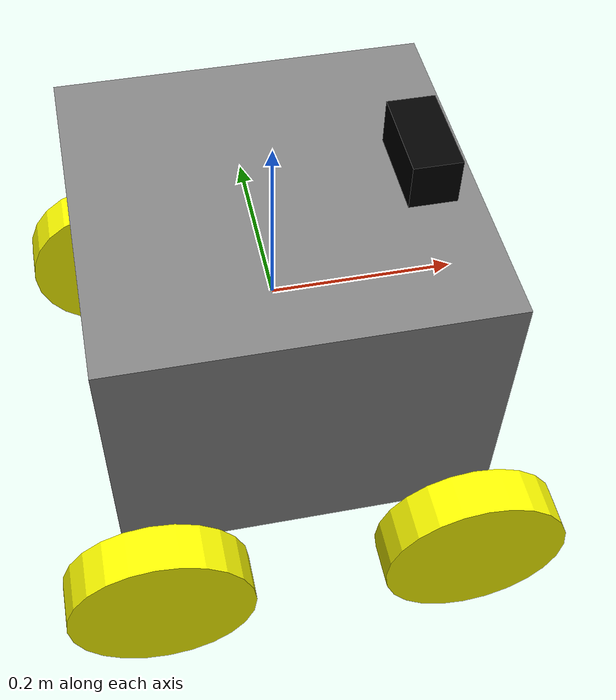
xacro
<?xml version="1.0"?>

<robot xmlns:xacro="http://www.ros.org/wiki/xacro" name="growbot">

    <xacro:include filename="$(find growbot_simulations)/urdf/wheel.xacro" />
    <xacro:include filename="$(find growbot_simulations)/urdf/camera.xacro" />
    <xacro:include filename="$(find growbot_simulations)/urdf/plugins.xacro" />
    <xacro:include filename="$(find growbot_simulations)/urdf/growbot.gazebo" />

  <material name="silver">
    <color rgba="0.5 0.5 0.5 1"/>
  </material>
  <material name="black">
    <color rgba="0 0 0 1"/>
  </material>
  <material name="yellow">
    <color rgba="1 1 0 1"/>
  </material>

  <xacro:property name="body_len" value="0.4" />
  <xacro:property name="body_width" value="0.4" />
  <xacro:property name="body_height" value="0.3" />
  <xacro:property name="wheel_diam" value="0.2" />
  <xacro:property name="wheel_width" value="0.05" />
  <xacro:property name="wheel_x_offset" value="0.17" />
  <xacro:property name="wheel_y_offset" value="0.25" />
  <xacro:property name="wheel_z_offset" value="-0.17" />
  <xacro:property name="mass" value="7" />

  <!-- dummy link and joint added to fix inertial error per [https://answers.ros.org/question/192817/error-msg-the-root-link_base-has-an-inertia-specified-in-the-urdf-but-kdl/] -->
  <link name="dummy_link">
  </link>

    <link name="chassis_link">
        <visual>
            <geometry>
                <box size="${body_len} ${body_width} ${body_height}"/>
            </geometry>
            <material name="silver"/>
        </visual>
        <collision>
            <geometry>
                <box size="${body_len} ${body_width} ${body_height}"/>
            </geometry>
        </collision>
        <inertial>
            <mass value="${mass}"/>
            <!--TODO: Make this an equation to calcultae it out -->
            <inertia ixx="0.145833333" ixy="0.0" ixz="0.0" iyy="0.186666667" iyz="0.0" izz="0.145833333"/>
        </inertial>
    </link>

      <!-- dummy link and joint added to fix inertial error per [https://answers.ros.org/question/192817/error-msg-the-root-link_base-has-an-inertia-specified-in-the-urdf-but-kdl/] -->
  <joint name="dummy_joint" type="fixed">
     <parent link="dummy_link"/>
     <child link="chassis_link"/>
  </joint>

  <xacro:wheel prefix="front_right" x_offset="${wheel_x_offset}" y_offset="${wheel_y_offset}" z_offset="${wheel_z_offset}" width="${wheel_width}" radius="${wheel_diam/2}" y_reflect="-1" />
  <xacro:wheel prefix="front_left" x_offset="${wheel_x_offset}" y_offset="${wheel_y_offset}" z_offset="${wheel_z_offset}" width="${wheel_width}" radius="${wheel_diam/2}" y_reflect="1" />
  <xacro:wheel prefix="back_right" x_offset="${-wheel_x_offset}" y_offset="${wheel_y_offset}" z_offset="${wheel_z_offset}" width="${wheel_width}" radius="${wheel_diam/2}" y_reflect="-1" />
  <xacro:wheel prefix="back_left"  x_offset="${-wheel_x_offset}" y_offset="${wheel_y_offset}" z_offset="${wheel_z_offset}" width="${wheel_width}" radius="${wheel_diam/2}" y_reflect="1" />

      <!-- TODO: send variables to camera script to allow for parametric camera size/location -->
  <xacro:camera />

</robot>

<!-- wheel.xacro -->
<robot xmlns:xacro="http://www.ros.org/wiki/xacro" name="growbot">
<xacro:macro name="wheel" params="prefix x_offset y_offset z_offset width radius y_reflect">

  <!--TODO: make inertial stuff parametric-->
    <!-- rpy (roll pitch yaw) describes rotation in radians -->
    <!-- xyz describes translation in meters -->
    <link name="${prefix}_wheel">
        <visual>
            <origin rpy="${pi/2} 0 0" xyz="0 0 0"/> <!-- set the origin to 0 to recenter the link to the child_frame -->
            <geometry>
                <cylinder length="${width}" radius="${radius}"/>
            </geometry>
                <material name="yellow"/>
        </visual>
        <collision>
            <origin rpy="${pi/2} 0 0" xyz="0 0 0"/> <!-- set the origin to 0 to recenter the link to the child_frame -->
            <geometry>
                <cylinder length="${width}" radius="${radius}"/>
            </geometry>
        </collision>
        <inertial>
            <origin rpy="${pi/2} 0 0" xyz="0 0 0"/> <!-- set the origin to 0 to recenter the link to the child_frame -->
            <mass value="1"/>
            <inertia ixx="0.06" ixy="0.0" ixz="0.0" iyy="0.06" iyz="0.0" izz="0.25"/>
        </inertial>
    </link>

    <joint name="chassis_to_${prefix}_wheel" type="continuous">
        <axis xyz="0 1 0"/>
        <parent link="chassis_link"/>
        <child link="${prefix}_wheel"/>
        <origin rpy="0 0 0" xyz="${x_offset} ${y_reflect*y_offset} ${z_offset}"/> <!-- move the child_frame with respect to parent_frame -->
        <limit effort="30" velocity="10"/>
    </joint>

    <transmission name="${prefix}_wheel_transmission">
        <type>transmission_interface/SimpleTransmission</type>
        <actuator name="$${prefix}_motor">
            <mechanicalReduction>1</mechanicalReduction>
        </actuator>
        <joint name="chassis_to_${prefix}_wheel">
            <hardwareInterface>hardware_interface/VelocityJointInterface</hardwareInterface>
        </joint>
    </transmission>
</xacro:macro>
</robot>

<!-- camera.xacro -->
<robot xmlns:xacro="http://www.ros.org/wiki/xacro" name="growbot">
<xacro:macro name="camera">

    <xacro:property name="camera_link" value="0.05" /> <!-- Size of square 'camera' box -->

    <!-- Camera -->
  <link name="camera_link">
    <collision>
            <origin rpy="0 0 0" xyz="0 0 0"/>
      <geometry>
    <box size="${camera_link} ${camera_link*2} ${camera_link}"/>
      </geometry>
    </collision>

    <visual>
            <origin rpy="0 0 0" xyz="0 0 0"/>
      <geometry>
    <box size="${camera_link} ${camera_link*2} ${camera_link}"/>
      </geometry>
      <material name="black"/>
    </visual>

    <inertial>
      <mass value="1e-5" />
            <origin rpy="0 0 0" xyz="0 0 0"/>
      <inertia ixx="1e-6" ixy="0" ixz="0" iyy="1e-6" iyz="0" izz="1e-6" />
    </inertial>
  </link>

  <!-- generate an optical frame http://www.ros.org/reps/rep-0103.html#suffix-frames
      so that ros and opencv can operate on the camera frame correctly -->
  <joint name="camera_optical_joint" type="fixed">
    <!-- these values have to be these values otherwise the gazebo camera image
        won't be aligned properly with the frame it is supposedly originating from -->
    <origin xyz="0 0 0" rpy="${-pi/2} 0 ${-pi/2}"/>
    <parent link="camera_link"/>
    <child link="camera_link_optical"/>
  </joint>

  <link name="camera_link_optical">
   </link>

    <joint name="chassis_to_camera" type="continuous">
        <axis xyz="0 0 1"/>  <!-- changes axis of rotation -->
        <parent link="chassis_link"/>
        <child link="camera_link"/>
        <origin rpy="0 0 0" xyz="0.15 0 ${camera_link/2 + 0.15}"/> <!-- moves the child_frame with respect to parent_frame -->
        <limit effort="30" velocity="1.0"/>
    </joint>

    <transmission name="camera_transmission">
        <type>transmission_interface/SimpleTransmission</type>
        <actuator name="$camera_motor">
            <mechanicalReduction>1</mechanicalReduction>
        </actuator>
        <joint name="chassis_to_camera">
            <hardwareInterface>hardware_interface/PositionJointInterface</hardwareInterface>
        </joint>
    </transmission>

</xacro:macro>

  <!--Gazebo Camera Plugin-->
   <gazebo reference="camera">
    <sensor type="camera" name="camera">
      <update_rate>30.0</update_rate>
      <camera name="head">
        <horizontal_fov>1.3962634</horizontal_fov>
        <image>
          <width>800</width>
          <height>800</height>
          <format>R8G8B8</format>
        </image>
        <clip>
          <near>0.02</near>
          <far>300</far>
        </clip>
        <noise>
          <type>gaussian</type>
          <!-- Noise is sampled independently per pixel on each frame.
               That pixel's noise value is added to each of its color
               channels, which at that point lie in the range [0,1]. -->
          <mean>0.0</mean>
          <stddev>0.007</stddev>
        </noise>
      </camera>
      <plugin name="camera_controller" filename="libgazebo_ros_camera.so">
        <alwaysOn>true</alwaysOn>
        <updateRate>0.0</updateRate>
        <cameraName>/growbot/camera</cameraName>
        <imageTopicName>image_raw</imageTopicName>
        <cameraInfoTopicName>camera_info</cameraInfoTopicName>
        <frameName>camera</frameName>
        <hackBaseline>0.07</hackBaseline>
        <distortionK1>0.0</distortionK1>
        <distortionK2>0.0</distortionK2>
        <distortionK3>0.0</distortionK3>
        <distortionT1>0.0</distortionT1>
        <distortionT2>0.0</distortionT2>
      </plugin>
    </sensor>
  </gazebo>

</robot>
